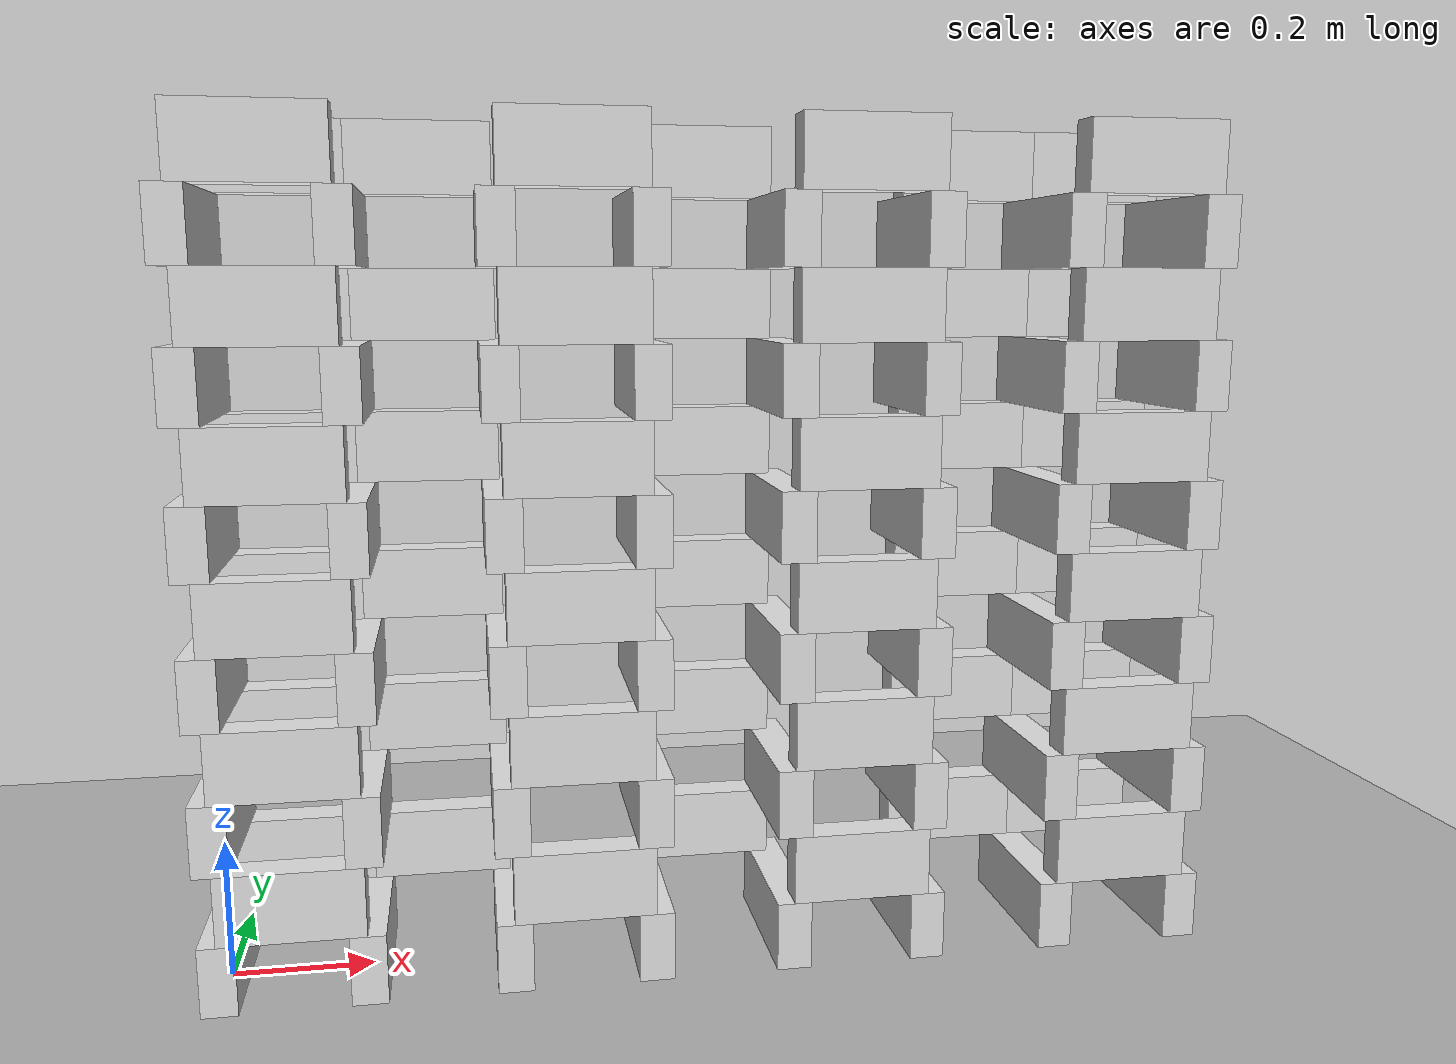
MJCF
<mujoco model="tower">
    <compiler angle="degree"/>

    <size njmax="9000" nconmax="3000" nstack="1000000000"/>

    <default>
        <geom solimp=".9 .9 .01"/>
		<default class="wall">
			<geom type="box" material="geom" rgba=".9 .9 .9 1" size="0.100000 0.025000 0.050000"/>
		</default>
		<default class="base">
			<geom type="box" material="geom" rgba=".9 .9 .9 1" size="0.025000 0.125000 0.050000"/>
		</default>
	</default>

    <asset>
        <texture type="skybox" builtin="gradient" width="128" height="128" rgb1=".4 .6 .8" rgb2="0 0 0"/>
        <texture name="texgeom" type="cube" builtin="flat" mark="cross" width="128" height="128"
            rgb1="0.6 0.6 0.6" rgb2="0.6 0.6 0.6" markrgb="1 1 1"/>
        <texture name="texplane" type="2d" builtin="checker" rgb1=".4 .4 .4" rgb2=".6 .6 .6"
            width="512" height="512"/>
        <material name='geom' texture="texgeom" texuniform="true"/>
        <material name='MatPlane' reflectance='0.3' texture="texplane" texrepeat="1 1" texuniform="true"/>
    </asset>

    <visual>
        <quality shadowsize="4096" offsamples="8"/>
        <map znear="0.1" force="0.05"/>
    </visual>

    <statistic extent="4"/>

    <worldbody>
        <light directional="true" diffuse=".8 .8 .8" pos="0 0 10" dir="0 0 -10"/>

        <geom pos="0 0 0" type="plane" size="3 3 .5" rgba=".7 .7 .7 1" material="MatPlane"/>
		<body pos="0.000000 0.000000 0.050000" quat="1.000000 0.000000 0.000000 0.000000"> <freejoint/> <geom class="base"/> </body>
		<body pos="0.200000 0.000000 0.050000" quat="1.000000 0.000000 0.000000 0.000000"> <freejoint/> <geom class="base"/> </body>
		<body pos="0.400000 0.000000 0.050000" quat="1.000000 0.000000 0.000000 0.000000"> <freejoint/> <geom class="base"/> </body>
		<body pos="0.600000 0.000000 0.050000" quat="1.000000 0.000000 0.000000 0.000000"> <freejoint/> <geom class="base"/> </body>
		<body pos="0.800000 0.000000 0.050000" quat="1.000000 0.000000 0.000000 0.000000"> <freejoint/> <geom class="base"/> </body>
		<body pos="1.000000 0.000000 0.050000" quat="1.000000 0.000000 0.000000 0.000000"> <freejoint/> <geom class="base"/> </body>
		<body pos="1.200000 0.000000 0.050000" quat="1.000000 0.000000 0.000000 0.000000"> <freejoint/> <geom class="base"/> </body>
		<body pos="1.400000 0.000000 0.050000" quat="1.000000 0.000000 0.000000 0.000000"> <freejoint/> <geom class="base"/> </body>
		<body pos="0.100000 -0.100000 0.150000" quat="1.000000 0.000000 0.000000 0.000000"> <freejoint/> <geom class="wall"/> </body>
		<body pos="0.500000 -0.100000 0.150000" quat="1.000000 0.000000 0.000000 0.000000"> <freejoint/> <geom class="wall"/> </body>
		<body pos="0.900000 -0.100000 0.150000" quat="1.000000 0.000000 0.000000 0.000000"> <freejoint/> <geom class="wall"/> </body>
		<body pos="1.300000 -0.100000 0.150000" quat="1.000000 0.000000 0.000000 0.000000"> <freejoint/> <geom class="wall"/> </body>
		<body pos="0.300000 0.100000 0.150000" quat="1.000000 0.000000 0.000000 0.000000"> <freejoint/> <geom class="wall"/> </body>
		<body pos="0.700000 0.100000 0.150000" quat="1.000000 0.000000 0.000000 0.000000"> <freejoint/> <geom class="wall"/> </body>
		<body pos="1.100000 0.100000 0.150000" quat="1.000000 0.000000 0.000000 0.000000"> <freejoint/> <geom class="wall"/> </body>
		<body pos="0.100000 0.100000 0.150000" quat="1.000000 0.000000 0.000000 0.000000"> <freejoint/> <geom class="wall"/> </body>
		<body pos="1.300000 0.100000 0.150000" quat="1.000000 0.000000 0.000000 0.000000"> <freejoint/> <geom class="wall"/> </body>
		<body pos="0.000000 0.000000 0.250000" quat="1.000000 0.000000 0.000000 0.000000"> <freejoint/> <geom class="base"/> </body>
		<body pos="0.200000 0.000000 0.250000" quat="1.000000 0.000000 0.000000 0.000000"> <freejoint/> <geom class="base"/> </body>
		<body pos="0.400000 0.000000 0.250000" quat="1.000000 0.000000 0.000000 0.000000"> <freejoint/> <geom class="base"/> </body>
		<body pos="0.600000 0.000000 0.250000" quat="1.000000 0.000000 0.000000 0.000000"> <freejoint/> <geom class="base"/> </body>
		<body pos="0.800000 0.000000 0.250000" quat="1.000000 0.000000 0.000000 0.000000"> <freejoint/> <geom class="base"/> </body>
		<body pos="1.000000 0.000000 0.250000" quat="1.000000 0.000000 0.000000 0.000000"> <freejoint/> <geom class="base"/> </body>
		<body pos="1.200000 0.000000 0.250000" quat="1.000000 0.000000 0.000000 0.000000"> <freejoint/> <geom class="base"/> </body>
		<body pos="1.400000 0.000000 0.250000" quat="1.000000 0.000000 0.000000 0.000000"> <freejoint/> <geom class="base"/> </body>
		<body pos="0.100000 -0.100000 0.350000" quat="1.000000 0.000000 0.000000 0.000000"> <freejoint/> <geom class="wall"/> </body>
		<body pos="0.500000 -0.100000 0.350000" quat="1.000000 0.000000 0.000000 0.000000"> <freejoint/> <geom class="wall"/> </body>
		<body pos="0.900000 -0.100000 0.350000" quat="1.000000 0.000000 0.000000 0.000000"> <freejoint/> <geom class="wall"/> </body>
		<body pos="1.300000 -0.100000 0.350000" quat="1.000000 0.000000 0.000000 0.000000"> <freejoint/> <geom class="wall"/> </body>
		<body pos="0.300000 0.100000 0.350000" quat="1.000000 0.000000 0.000000 0.000000"> <freejoint/> <geom class="wall"/> </body>
		<body pos="0.700000 0.100000 0.350000" quat="1.000000 0.000000 0.000000 0.000000"> <freejoint/> <geom class="wall"/> </body>
		<body pos="1.100000 0.100000 0.350000" quat="1.000000 0.000000 0.000000 0.000000"> <freejoint/> <geom class="wall"/> </body>
		<body pos="0.100000 0.100000 0.350000" quat="1.000000 0.000000 0.000000 0.000000"> <freejoint/> <geom class="wall"/> </body>
		<body pos="1.300000 0.100000 0.350000" quat="1.000000 0.000000 0.000000 0.000000"> <freejoint/> <geom class="wall"/> </body>
		<body pos="0.000000 0.000000 0.450000" quat="1.000000 0.000000 0.000000 0.000000"> <freejoint/> <geom class="base"/> </body>
		<body pos="0.200000 0.000000 0.450000" quat="1.000000 0.000000 0.000000 0.000000"> <freejoint/> <geom class="base"/> </body>
		<body pos="0.400000 0.000000 0.450000" quat="1.000000 0.000000 0.000000 0.000000"> <freejoint/> <geom class="base"/> </body>
		<body pos="0.600000 0.000000 0.450000" quat="1.000000 0.000000 0.000000 0.000000"> <freejoint/> <geom class="base"/> </body>
		<body pos="0.800000 0.000000 0.450000" quat="1.000000 0.000000 0.000000 0.000000"> <freejoint/> <geom class="base"/> </body>
		<body pos="1.000000 0.000000 0.450000" quat="1.000000 0.000000 0.000000 0.000000"> <freejoint/> <geom class="base"/> </body>
		<body pos="1.200000 0.000000 0.450000" quat="1.000000 0.000000 0.000000 0.000000"> <freejoint/> <geom class="base"/> </body>
		<body pos="1.400000 0.000000 0.450000" quat="1.000000 0.000000 0.000000 0.000000"> <freejoint/> <geom class="base"/> </body>
		<body pos="0.100000 -0.100000 0.550000" quat="1.000000 0.000000 0.000000 0.000000"> <freejoint/> <geom class="wall"/> </body>
		<body pos="0.500000 -0.100000 0.550000" quat="1.000000 0.000000 0.000000 0.000000"> <freejoint/> <geom class="wall"/> </body>
		<body pos="0.900000 -0.100000 0.550000" quat="1.000000 0.000000 0.000000 0.000000"> <freejoint/> <geom class="wall"/> </body>
		<body pos="1.300000 -0.100000 0.550000" quat="1.000000 0.000000 0.000000 0.000000"> <freejoint/> <geom class="wall"/> </body>
		<body pos="0.300000 0.100000 0.550000" quat="1.000000 0.000000 0.000000 0.000000"> <freejoint/> <geom class="wall"/> </body>
		<body pos="0.700000 0.100000 0.550000" quat="1.000000 0.000000 0.000000 0.000000"> <freejoint/> <geom class="wall"/> </body>
		<body pos="1.100000 0.100000 0.550000" quat="1.000000 0.000000 0.000000 0.000000"> <freejoint/> <geom class="wall"/> </body>
		<body pos="0.100000 0.100000 0.550000" quat="1.000000 0.000000 0.000000 0.000000"> <freejoint/> <geom class="wall"/> </body>
		<body pos="1.300000 0.100000 0.550000" quat="1.000000 0.000000 0.000000 0.000000"> <freejoint/> <geom class="wall"/> </body>
		<body pos="0.000000 0.000000 0.650000" quat="1.000000 0.000000 0.000000 0.000000"> <freejoint/> <geom class="base"/> </body>
		<body pos="0.200000 0.000000 0.650000" quat="1.000000 0.000000 0.000000 0.000000"> <freejoint/> <geom class="base"/> </body>
		<body pos="0.400000 0.000000 0.650000" quat="1.000000 0.000000 0.000000 0.000000"> <freejoint/> <geom class="base"/> </body>
		<body pos="0.600000 0.000000 0.650000" quat="1.000000 0.000000 0.000000 0.000000"> <freejoint/> <geom class="base"/> </body>
		<body pos="0.800000 0.000000 0.650000" quat="1.000000 0.000000 0.000000 0.000000"> <freejoint/> <geom class="base"/> </body>
		<body pos="1.000000 0.000000 0.650000" quat="1.000000 0.000000 0.000000 0.000000"> <freejoint/> <geom class="base"/> </body>
		<body pos="1.200000 0.000000 0.650000" quat="1.000000 0.000000 0.000000 0.000000"> <freejoint/> <geom class="base"/> </body>
		<body pos="1.400000 0.000000 0.650000" quat="1.000000 0.000000 0.000000 0.000000"> <freejoint/> <geom class="base"/> </body>
		<body pos="0.100000 -0.100000 0.750000" quat="1.000000 0.000000 0.000000 0.000000"> <freejoint/> <geom class="wall"/> </body>
		<body pos="0.500000 -0.100000 0.750000" quat="1.000000 0.000000 0.000000 0.000000"> <freejoint/> <geom class="wall"/> </body>
		<body pos="0.900000 -0.100000 0.750000" quat="1.000000 0.000000 0.000000 0.000000"> <freejoint/> <geom class="wall"/> </body>
		<body pos="1.300000 -0.100000 0.750000" quat="1.000000 0.000000 0.000000 0.000000"> <freejoint/> <geom class="wall"/> </body>
		<body pos="0.300000 0.100000 0.750000" quat="1.000000 0.000000 0.000000 0.000000"> <freejoint/> <geom class="wall"/> </body>
		<body pos="0.700000 0.100000 0.750000" quat="1.000000 0.000000 0.000000 0.000000"> <freejoint/> <geom class="wall"/> </body>
		<body pos="1.100000 0.100000 0.750000" quat="1.000000 0.000000 0.000000 0.000000"> <freejoint/> <geom class="wall"/> </body>
		<body pos="0.100000 0.100000 0.750000" quat="1.000000 0.000000 0.000000 0.000000"> <freejoint/> <geom class="wall"/> </body>
		<body pos="1.300000 0.100000 0.750000" quat="1.000000 0.000000 0.000000 0.000000"> <freejoint/> <geom class="wall"/> </body>
		<body pos="0.000000 0.000000 0.850000" quat="1.000000 0.000000 0.000000 0.000000"> <freejoint/> <geom class="base"/> </body>
		<body pos="0.200000 0.000000 0.850000" quat="1.000000 0.000000 0.000000 0.000000"> <freejoint/> <geom class="base"/> </body>
		<body pos="0.400000 0.000000 0.850000" quat="1.000000 0.000000 0.000000 0.000000"> <freejoint/> <geom class="base"/> </body>
		<body pos="0.600000 0.000000 0.850000" quat="1.000000 0.000000 0.000000 0.000000"> <freejoint/> <geom class="base"/> </body>
		<body pos="0.800000 0.000000 0.850000" quat="1.000000 0.000000 0.000000 0.000000"> <freejoint/> <geom class="base"/> </body>
		<body pos="1.000000 0.000000 0.850000" quat="1.000000 0.000000 0.000000 0.000000"> <freejoint/> <geom class="base"/> </body>
		<body pos="1.200000 0.000000 0.850000" quat="1.000000 0.000000 0.000000 0.000000"> <freejoint/> <geom class="base"/> </body>
		<body pos="1.400000 0.000000 0.850000" quat="1.000000 0.000000 0.000000 0.000000"> <freejoint/> <geom class="base"/> </body>
		<body pos="0.100000 -0.100000 0.950000" quat="1.000000 0.000000 0.000000 0.000000"> <freejoint/> <geom class="wall"/> </body>
		<body pos="0.500000 -0.100000 0.950000" quat="1.000000 0.000000 0.000000 0.000000"> <freejoint/> <geom class="wall"/> </body>
		<body pos="0.900000 -0.100000 0.950000" quat="1.000000 0.000000 0.000000 0.000000"> <freejoint/> <geom class="wall"/> </body>
		<body pos="1.300000 -0.100000 0.950000" quat="1.000000 0.000000 0.000000 0.000000"> <freejoint/> <geom class="wall"/> </body>
		<body pos="0.300000 0.100000 0.950000" quat="1.000000 0.000000 0.000000 0.000000"> <freejoint/> <geom class="wall"/> </body>
		<body pos="0.700000 0.100000 0.950000" quat="1.000000 0.000000 0.000000 0.000000"> <freejoint/> <geom class="wall"/> </body>
		<body pos="1.100000 0.100000 0.950000" quat="1.000000 0.000000 0.000000 0.000000"> <freejoint/> <geom class="wall"/> </body>
		<body pos="0.100000 0.100000 0.950000" quat="1.000000 0.000000 0.000000 0.000000"> <freejoint/> <geom class="wall"/> </body>
		<body pos="1.300000 0.100000 0.950000" quat="1.000000 0.000000 0.000000 0.000000"> <freejoint/> <geom class="wall"/> </body>
		<body pos="0.000000 0.000000 1.050000" quat="1.000000 0.000000 0.000000 0.000000"> <freejoint/> <geom class="base"/> </body>
		<body pos="0.200000 0.000000 1.050000" quat="1.000000 0.000000 0.000000 0.000000"> <freejoint/> <geom class="base"/> </body>
		<body pos="0.400000 0.000000 1.050000" quat="1.000000 0.000000 0.000000 0.000000"> <freejoint/> <geom class="base"/> </body>
		<body pos="0.600000 0.000000 1.050000" quat="1.000000 0.000000 0.000000 0.000000"> <freejoint/> <geom class="base"/> </body>
		<body pos="0.800000 0.000000 1.050000" quat="1.000000 0.000000 0.000000 0.000000"> <freejoint/> <geom class="base"/> </body>
		<body pos="1.000000 0.000000 1.050000" quat="1.000000 0.000000 0.000000 0.000000"> <freejoint/> <geom class="base"/> </body>
		<body pos="1.200000 0.000000 1.050000" quat="1.000000 0.000000 0.000000 0.000000"> <freejoint/> <geom class="base"/> </body>
		<body pos="1.400000 0.000000 1.050000" quat="1.000000 0.000000 0.000000 0.000000"> <freejoint/> <geom class="base"/> </body>
		<body pos="0.100000 -0.100000 1.150000" quat="1.000000 0.000000 0.000000 0.000000"> <freejoint/> <geom class="wall"/> </body>
		<body pos="0.500000 -0.100000 1.150000" quat="1.000000 0.000000 0.000000 0.000000"> <freejoint/> <geom class="wall"/> </body>
		<body pos="0.900000 -0.100000 1.150000" quat="1.000000 0.000000 0.000000 0.000000"> <freejoint/> <geom class="wall"/> </body>
		<body pos="1.300000 -0.100000 1.150000" quat="1.000000 0.000000 0.000000 0.000000"> <freejoint/> <geom class="wall"/> </body>
		<body pos="0.300000 0.100000 1.150000" quat="1.000000 0.000000 0.000000 0.000000"> <freejoint/> <geom class="wall"/> </body>
		<body pos="0.700000 0.100000 1.150000" quat="1.000000 0.000000 0.000000 0.000000"> <freejoint/> <geom class="wall"/> </body>
		<body pos="1.100000 0.100000 1.150000" quat="1.000000 0.000000 0.000000 0.000000"> <freejoint/> <geom class="wall"/> </body>
		<body pos="0.100000 0.100000 1.150000" quat="1.000000 0.000000 0.000000 0.000000"> <freejoint/> <geom class="wall"/> </body>
		<body pos="1.300000 0.100000 1.150000" quat="1.000000 0.000000 0.000000 0.000000"> <freejoint/> <geom class="wall"/> </body>

    </worldbody>
</mujoco>
